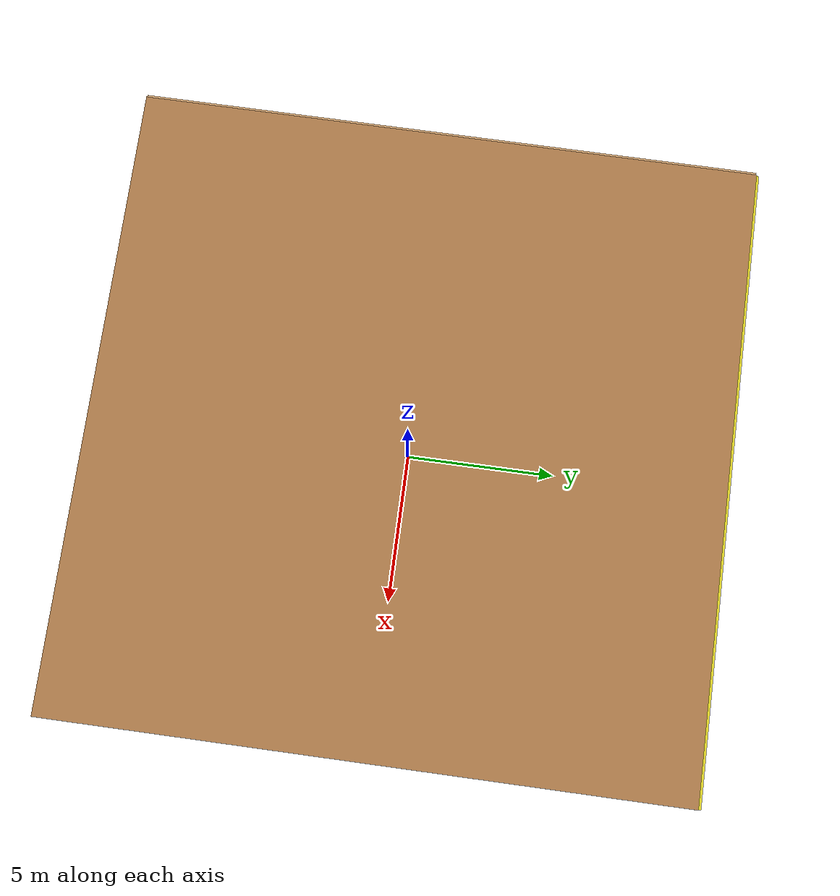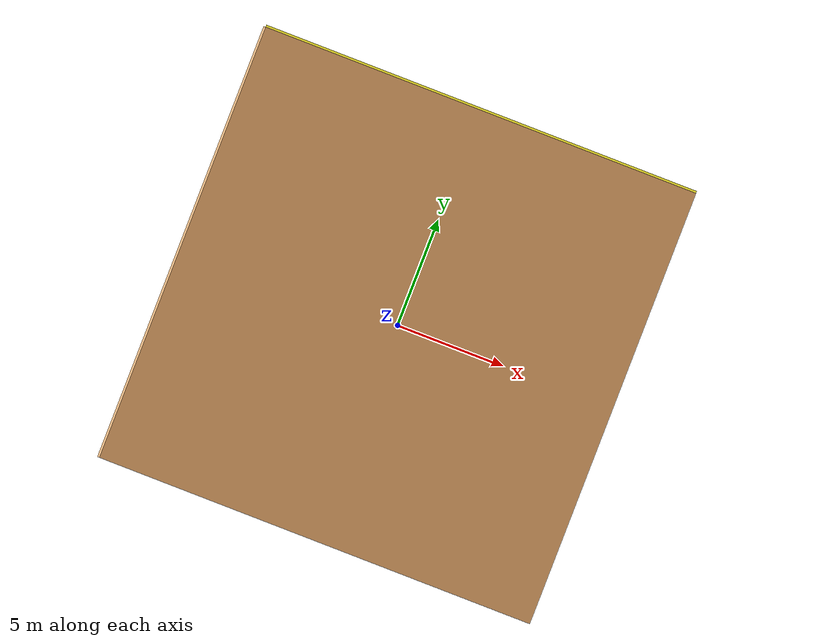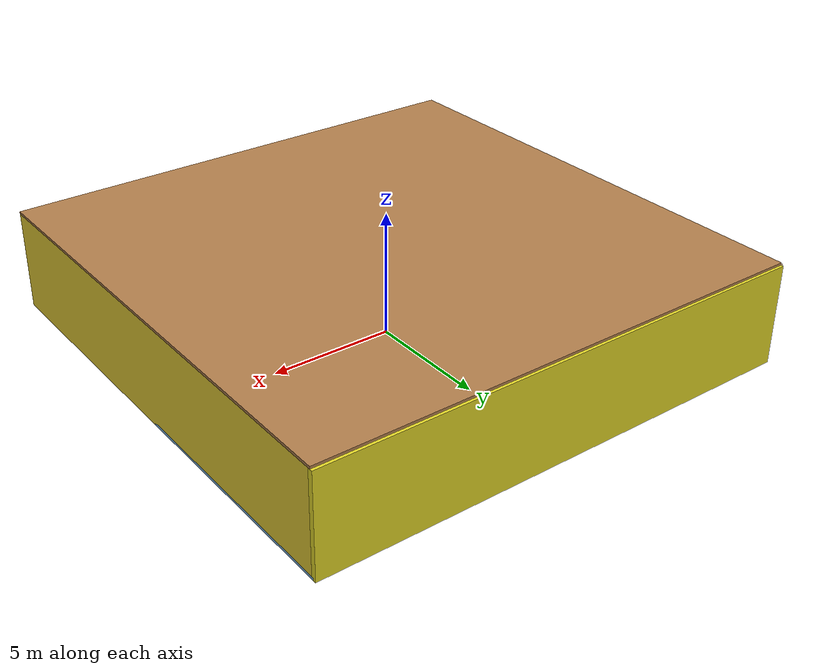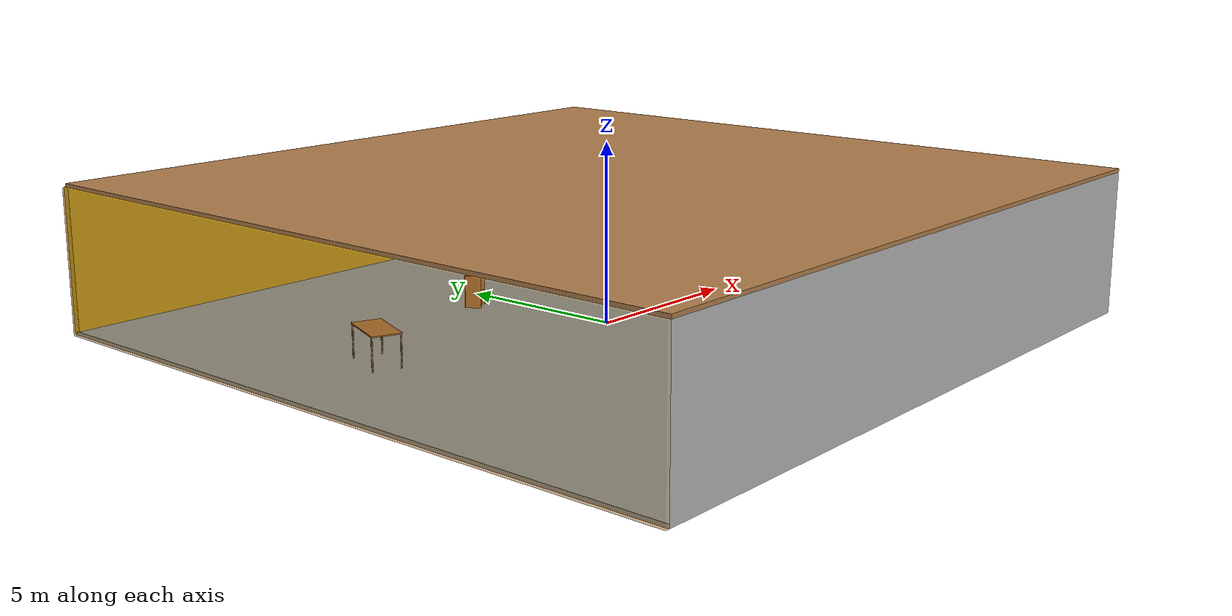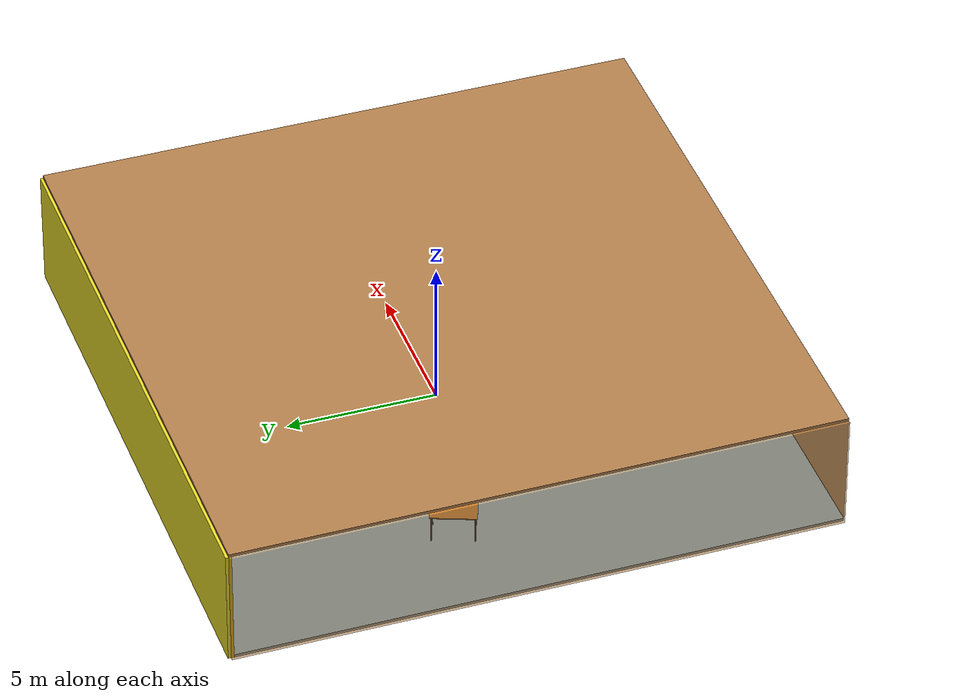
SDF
<sdf version="1.4">
 <world name="default">
  <physics type="ode">
   <max_step_size>0.001</max_step_size>
   <real_time_factor>1</real_time_factor>
   <real_time_update_rate>1000</real_time_update_rate>
   <gravity>0 0 -9.8</gravity>
  </physics>
  <scene><ambient>0.4 0.4 0.4 1</ambient><background>0.7 0.7 0.7 1</background><shadows>1</shadows></scene>
  <model name="Surrounding">
   <static>1</static>
   <link name="Ceiling">
    <collision name="Ceiling_Collision"><geometry><box><size>20 20 0.1</size></box></geometry></collision>
    <visual name="Ceiling_Visual">
     <geometry><box><size>20 20 0.1</size></box></geometry>
     <material>
      <script><uri>file://media/materials/scripts/gazebo.material</uri><name>Gazebo/WoodFloor</name></script>
     </material>
    </visual>
    <pose>0 0 4.05 0 0 0</pose>
   </link>
   <link name="Wall_South">
    <collision name="Wall_South_Collision">
     <geometry><box><size>20 0 4</size></box></geometry>
     <pose>0 0 2 0 -0 0</pose>
    </collision>
    <visual name="Wall_South_Visual">
     <pose>0 0 2 0 -0 0</pose>
     <geometry><box><size>20 0 4</size></box></geometry>
     <material>
      <script><uri>file://media/materials/scripts/gazebo.material</uri><name>Gazebo/LightOff</name></script>
     </material>
    </visual>
    <velocity_decay><linear>0</linear><angular>0</angular></velocity_decay>
    <pose>0 -10 0 0 -0 0</pose>
   </link>
   <link name="Wall_East">
    <collision name="Wall_21_Collision">
     <geometry><box><size>20 0 4</size></box></geometry>
     <pose>0 0 2 0 -0 0</pose>
    </collision>
    <visual name="Wall_21_Visual">
     <pose>0 0 2 0 -0 0</pose>
     <geometry><box><size>20 0 4</size></box></geometry>
     <material>
      <script><uri>file://media/materials/scripts/gazebo.material</uri><name>Gazebo/ZincYellow</name></script>
     </material>
    </visual>
    <velocity_decay><linear>0</linear><angular>0</angular></velocity_decay>
    <pose>10 0 0 0 -0 1.5708</pose>
   </link>
   <link name="Wall_North">
    <collision name="Wall_22_Collision">
     <geometry><box><size>20 0.2 4</size></box></geometry>
     <pose>0 0 2 0 -0 0</pose>
    </collision>
    <visual name="Wall_22_Visual">
     <pose>0 0 2 0 -0 0</pose>
     <geometry><box><size>20 0.2 4</size></box></geometry>
     <material>
      <script><uri>file://media/materials/scripts/gazebo.material</uri><name>Gazebo/Yellow</name></script>
     </material>
    </visual>
    <velocity_decay><linear>0</linear><angular>0</angular></velocity_decay>
    <pose>0 10 0 0 -0 0</pose>
   </link>
   <link name="Wall_West">
    <collision name="Wall_23_Collision">
     <geometry><box><size>20 0.2 4</size></box></geometry>
     <pose>0 0 2 0 -0 0</pose>
    </collision>
    <visual name="Wall_23_Visual">
     <pose>0 0 2 0 -0 0</pose>
     <geometry><box><size>20 0.2 4</size></box></geometry>
     <material>
      <script>
       <uri>file://media/materials/scripts/gazebo.material</uri>
       <name>Gazebo/OrangeTransparent</name>
      </script>
     </material>
    </visual>
    <velocity_decay><linear>0</linear><angular>0</angular></velocity_decay>
    <pose>-10 0 0 0 0 -1.5708</pose>
   </link>
   <link name="Ground_link">
    <collision name="collision">
     <pose>0 0 .05 0 -0 0</pose>
     <geometry><box><size>20 20 0.1</size></box></geometry>
    </collision>
    <visual name="visual">
     <pose>0 0 .05 0 -0 0</pose>
     <geometry><box><size>20 20 0.1</size></box></geometry>
     <material>
      <script><uri>file://media/materials/scripts/gazebo.material</uri><name>Gazebo/SkyBlue</name></script>
     </material>
    </visual>
   </link>
   <static>1</static>
  </model>
  <spherical_coordinates>
   <surface_model>EARTH_WGS84</surface_model>
   <latitude_deg>0</latitude_deg>
   <longitude_deg>0</longitude_deg>
   <elevation>0</elevation>
   <heading_deg>0</heading_deg>
  </spherical_coordinates>
  <light name="lightball_0" type="diffuse">
   <diffuse>0.8 0.8 0.8 1</diffuse>
   <specular>0.2 0.2 0.2 1</specular>
   <attenuation>
    <range>100</range>
    <constant>0.7</constant>
    <linear>0.01</linear>
    <quadratic>0.001</quadratic>
   </attenuation>
   <direction>-0.5 0.1 -0.9</direction>
   <pose>-7.06010534533 4.3899106573 0.98435532904 0 0 0</pose>
  </light>
  <light name="lightball_1" type="diffuse">
   <diffuse>0.8 0.8 0.8 1</diffuse>
   <specular>0.2 0.2 0.2 1</specular>
   <attenuation>
    <range>100</range>
    <constant>0.7</constant>
    <linear>0.01</linear>
    <quadratic>0.001</quadratic>
   </attenuation>
   <direction>-0.5 0.1 -0.9</direction>
   <pose>-1.77390123218 -8.09545870332 2.6734215314 0 0 0</pose>
  </light>
  <light name="lightball_2" type="diffuse">
   <diffuse>0.8 0.8 0.8 1</diffuse>
   <specular>0.2 0.2 0.2 1</specular>
   <attenuation>
    <range>100</range>
    <constant>0.7</constant>
    <linear>0.01</linear>
    <quadratic>0.001</quadratic>
   </attenuation>
   <direction>-0.5 0.1 -0.9</direction>
   <pose>-5.70353048878 2.39256204679 0.826483105343 0 0 0</pose>
  </light>
  <light name="lightball_3" type="diffuse">
   <diffuse>0.8 0.8 0.8 1</diffuse>
   <specular>0.2 0.2 0.2 1</specular>
   <attenuation>
    <range>100</range>
    <constant>0.7</constant>
    <linear>0.01</linear>
    <quadratic>0.001</quadratic>
   </attenuation>
   <direction>-0.5 0.1 -0.9</direction>
   <pose>8.36450736084 5.615826188 2.65240308244 0 0 0</pose>
  </light>
  <light name="lightball_4" type="diffuse">
   <diffuse>0.8 0.8 0.8 1</diffuse>
   <specular>0.2 0.2 0.2 1</specular>
   <attenuation>
    <range>100</range>
    <constant>0.7</constant>
    <linear>0.01</linear>
    <quadratic>0.001</quadratic>
   </attenuation>
   <direction>-0.5 0.1 -0.9</direction>
   <pose>9.42567759614 7.52039904072 3.58878439895 0 0 0</pose>
  </light>
  <light name="lightball_5" type="diffuse">
   <diffuse>0.8 0.8 0.8 1</diffuse>
   <specular>0.2 0.2 0.2 1</specular>
   <attenuation>
    <range>100</range>
    <constant>0.7</constant>
    <linear>0.01</linear>
    <quadratic>0.001</quadratic>
   </attenuation>
   <direction>-0.5 0.1 -0.9</direction>
   <pose>7.05919102114 -7.25137625731 0.899917477045 0 0 0</pose>
  </light>
  <light name="lightball_6" type="diffuse">
   <diffuse>0.8 0.8 0.8 1</diffuse>
   <specular>0.2 0.2 0.2 1</specular>
   <attenuation>
    <range>100</range>
    <constant>0.7</constant>
    <linear>0.01</linear>
    <quadratic>0.001</quadratic>
   </attenuation>
   <direction>-0.5 0.1 -0.9</direction>
   <pose>9.10776998666 -9.532416746 2.48646710179 0 0 0</pose>
  </light>
  <include><uri>model://table</uri><pose>-6.73974935667 1.73016617721 0 0 0 1.20419827289</pose></include>
  <include><uri>model://cabinet</uri><pose>-1.25183599682 3.81225680705 0 0 0 2.14313279516</pose></include>
  <include>
   <uri>model://textured_shapes</uri>
   <pose>2.18964263146 -4.74496236755 0 0 0 2.7087455959</pose>
  </include>
  <include><uri>model://cabinet</uri><pose>2.44402347008 -2.44529371879 0 0 0 2.68986952138</pose></include>
  <include><uri>model://table</uri><pose>8.23733455868 -1.94368281663 0 0 0 1.86901007694</pose></include>
 </world>
</sdf>

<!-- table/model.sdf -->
<sdf version="1.5">
  <model name="table">
    <static>true</static>
    <link name="link">
      <collision name="surface">
        <pose>0 0 1.0 0 0 0</pose>
        <geometry>
          <box>
            <size>1.5 0.8 0.03</size>
          </box>
        </geometry>
        <surface>
          <friction>
            <ode>
              <mu>0.6</mu>
              <mu2>0.6</mu2>
            </ode>
          </friction>
        </surface>
      </collision>
      <visual name="visual1">
        <pose>0 0 1.0 0 0 0</pose>
        <geometry>
          <box>
            <size>1.5 0.8 0.03</size>
          </box>
        </geometry>
        <material>
          <script>
            <uri>model://media/materials/scripts/gazebo.material</uri>
            <name>Gazebo/Wood</name>
          </script>
        </material>
      </visual>
      <collision name="front_left_leg">
        <pose>0.68 0.38 0.5 0 0 0</pose>
        <geometry>
          <cylinder>
            <radius>0.02</radius>
            <length>1.0</length>
          </cylinder>
        </geometry>
      </collision>
      <visual name="front_left_leg">
        <pose>0.68 0.38 0.5 0 0 0</pose>
        <geometry>
          <cylinder>
            <radius>0.02</radius>
            <length>1.0</length>
          </cylinder>
        </geometry>
        <material>
          <script>
            <uri>model://media/materials/scripts/gazebo.material</uri>
            <name>Gazebo/Grey</name>
          </script>
        </material>
      </visual>
      <collision name="front_right_leg">
        <pose>0.68 -0.38 0.5 0 0 0</pose>
        <geometry>
          <cylinder>
            <radius>0.02</radius>
            <length>1.0</length>
          </cylinder>
        </geometry>
      </collision>
      <visual name="front_right_leg">
        <pose>0.68 -0.38 0.5 0 0 0</pose>
        <geometry>
          <cylinder>
            <radius>0.02</radius>
            <length>1.0</length>
          </cylinder>
        </geometry>
        <material>
          <script>
            <uri>model://media/materials/scripts/gazebo.material</uri>
            <name>Gazebo/Grey</name>
          </script>
        </material>
      </visual>
      <collision name="back_right_leg">
        <pose>-0.68 -0.38 0.5 0 0 0</pose>
        <geometry>
          <cylinder>
            <radius>0.02</radius>
            <length>1.0</length>
          </cylinder>
        </geometry>
      </collision>
      <visual name="back_right_leg">
        <pose>-0.68 -0.38 0.5 0 0 0</pose>
        <geometry>
          <cylinder>
            <radius>0.02</radius>
            <length>1.0</length>
          </cylinder>
        </geometry>
        <material>
          <script>
            <uri>model://media/materials/scripts/gazebo.material</uri>
            <name>Gazebo/Grey</name>
          </script>
        </material>
      </visual>
      <collision name="back_left_leg">
        <pose>-0.68 0.38 0.5 0 0 0</pose>
        <geometry>
          <cylinder>
            <radius>0.02</radius>
            <length>1.0</length>
          </cylinder>
        </geometry>
      </collision>
      <visual name="back_left_leg">
        <pose>-0.68 0.38 0.5 0 0 0</pose>
        <geometry>
          <cylinder>
            <radius>0.02</radius>
            <length>1.0</length>
          </cylinder>
        </geometry>
        <material>
          <script>
            <uri>model://media/materials/scripts/gazebo.material</uri>
            <name>Gazebo/Grey</name>
          </script>
        </material>
      </visual>
    </link>
  </model>
</sdf>

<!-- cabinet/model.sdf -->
<sdf version="1.5">
  <model name="cabinet">
    <static>true</static>
    <link name="cabinet_bottom_plate">
      <inertial>
        <pose>0 0 -1 0 0 0</pose>
        <inertia>
          <ixx>2.050000</ixx>
          <ixy>0</ixy>
          <ixz>0</ixz>
          <iyy>2.050000</iyy>
          <iyz>0</iyz>
          <izz>2.050000</izz>
        </inertia>
        <mass>25.000000</mass>
      </inertial>
      <collision name="cabinet_bottom_plate_geom">
        <pose>0 0 0.010000 0 0 0</pose>
        <geometry>
          <box>
            <size>0.450000 0.450000 0.020000</size>
          </box>
        </geometry>
      </collision>
      <visual name="cabinet_bottom_plate_geom_visual">
        <pose>0 0 0.010000 0 0 0</pose>
        <geometry>
          <box>
            <size>0.450000 0.450000 0.020000</size>
          </box>
        </geometry>
        <material>
          <script>
            <uri>model://media/materials/scripts/gazebo.material</uri>
            <name>Gazebo/Wood</name>
          </script>
        </material>
      </visual>
      <collision name="cabinet_bottom_plate_geom_cabinet_back_plate">
        <pose>0.235000 0 0.510000 0 0 0</pose>
        <geometry>
          <box>
            <size>0.020000 0.450000 1.020000</size>
          </box>
        </geometry>
      </collision>
      <visual name="cabinet_bottom_plate_geom_cabinet_back_plate_visual">
        <pose>0.235000 0 0.510000 0 0 0</pose>
        <geometry>
          <box>
            <size>0.020000 0.450000 1.020000</size>
          </box>
        </geometry>
        <material>
          <script>
            <uri>model://media/materials/scripts/gazebo.material</uri>
            <name>Gazebo/Wood</name>
          </script>
        </material>
      </visual>
      <collision name="cabinet_bottom_plate_geom_cabinet_left_plate">
        <pose>0 0.235000 0.510000 0 0 0</pose>
        <geometry>
          <box>
            <size>0.450000 0.020000 1.020000</size>
          </box>
        </geometry>
      </collision>
      <visual name="cabinet_bottom_plate_geom_cabinet_left_plate_visual">
        <pose>0 0.235000 0.510000 0 0 0</pose>
        <geometry>
          <box>
            <size>0.450000 0.020000 1.020000</size>
          </box>
        </geometry>
        <material>
          <script>
            <uri>model://media/materials/scripts/gazebo.material</uri>
            <name>Gazebo/Wood</name>
          </script>
        </material>
      </visual>
      <collision name="cabinet_bottom_plate_geom_cabinet_middle_plate">
        <pose>0 0 0.510000 0 0 0</pose>
        <geometry>
          <box>
            <size>0.450000 0.450000 0.020000</size>
          </box>
        </geometry>
      </collision>
      <visual name="cabinet_bottom_plate_geom_cabinet_middle_plate_visual">
        <pose>0 0 0.510000 0 0 0</pose>
        <geometry>
          <box>
            <size>0.450000 0.450000 0.020000</size>
          </box>
        </geometry>
        <material>
          <script>
            <uri>model://media/materials/scripts/gazebo.material</uri>
            <name>Gazebo/Wood</name>
          </script>
        </material>
      </visual>
      <collision name="cabinet_bottom_plate_geom_cabinet_right_plate">
        <pose>0 -0.235000 0.510000 0 0 0</pose>
        <geometry>
          <box>
            <size>0.450000 0.020000 1.020000</size>
          </box>
        </geometry>
      </collision>
      <visual name="cabinet_bottom_plate_geom_cabinet_right_plate_visual">
        <pose>0 -0.235000 0.510000 0 0 0</pose>
        <geometry>
          <box>
            <size>0.450000 0.020000 1.020000</size>
          </box>
        </geometry>
        <material>
          <script>
            <uri>model://media/materials/scripts/gazebo.material</uri>
            <name>Gazebo/Wood</name>
          </script>
        </material>
      </visual>
      <collision name="cabinet_bottom_plate_geom_cabinet_top_plate">
        <pose>0 0 1.010000 0 0 0</pose>
        <geometry>
          <box>
            <size>0.450000 0.450000 0.020000</size>
          </box>
        </geometry>
      </collision>
      <visual name="cabinet_bottom_plate_geom_cabinet_top_plate_visual">
        <pose>0 0 1.010000 0 0 0</pose>
        <geometry>
          <box>
            <size>0.450000 0.450000 0.020000</size>
          </box>
        </geometry>
        <material>
          <script>
            <uri>model://media/materials/scripts/gazebo.material</uri>
            <name>Gazebo/Wood</name>
          </script>
        </material>
      </visual>
    </link>
  </model>
</sdf>

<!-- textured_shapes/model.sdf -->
<sdf version="1.6">
  <model name="textured_shapes">
    <pose>0 0 0.5 0 0 0</pose>
    <link name="box">
      <pose>0 -1.5 0 0 0 0</pose>
      <collision name="collision">
        <geometry>
          <box>
            <size>1 1 1</size>
          </box>
        </geometry>
      </collision>
      <visual name="visual">
        <geometry>
          <box>
            <size>1 1 1</size>
          </box>
        </geometry>
        <material>
          <script>
            <uri>model://../model_source/models/textured_shapes/materials/scripts</uri>
            <uri>model://../model_source/models/textured_shapes/materials/textures</uri>
            <name>TexturedShape/Squares</name>
          </script>
        </material>
      </visual>
    </link>
    <link name="sphere">
      <collision name="collision">
        <geometry>
          <sphere>
            <radius>0.5</radius>
          </sphere>
        </geometry>
      </collision>
      <visual name="visual">
        <geometry>
          <sphere>
            <radius>0.5</radius>
          </sphere>
        </geometry>
        <material>
          <script>
            <uri>model://../model_source/models/textured_shapes/materials/scripts</uri>
            <uri>model://../model_source/models/textured_shapes/materials/textures</uri>
            <name>TexturedShape/Squares</name>
          </script>
        </material>
      </visual>
    </link>
    <link name="cylinder">
      <pose>0 1.5 0 0 0 0</pose>
      <collision name="collision">
        <geometry>
          <cylinder>
            <radius>0.5</radius>
            <length>1</length>
          </cylinder>
        </geometry>
      </collision>
      <visual name="visual">
        <geometry>
          <cylinder>
            <radius>0.5</radius>
            <length>1</length>
          </cylinder>
        </geometry>
        <material>
          <script>
            <uri>model://../model_source/models/textured_shapes/materials/scripts</uri>
            <uri>model://../model_source/models/textured_shapes/materials/textures</uri>
            <name>TexturedShape/Squares</name>
          </script>
        </material>
      </visual>
    </link>
  </model>
</sdf>
